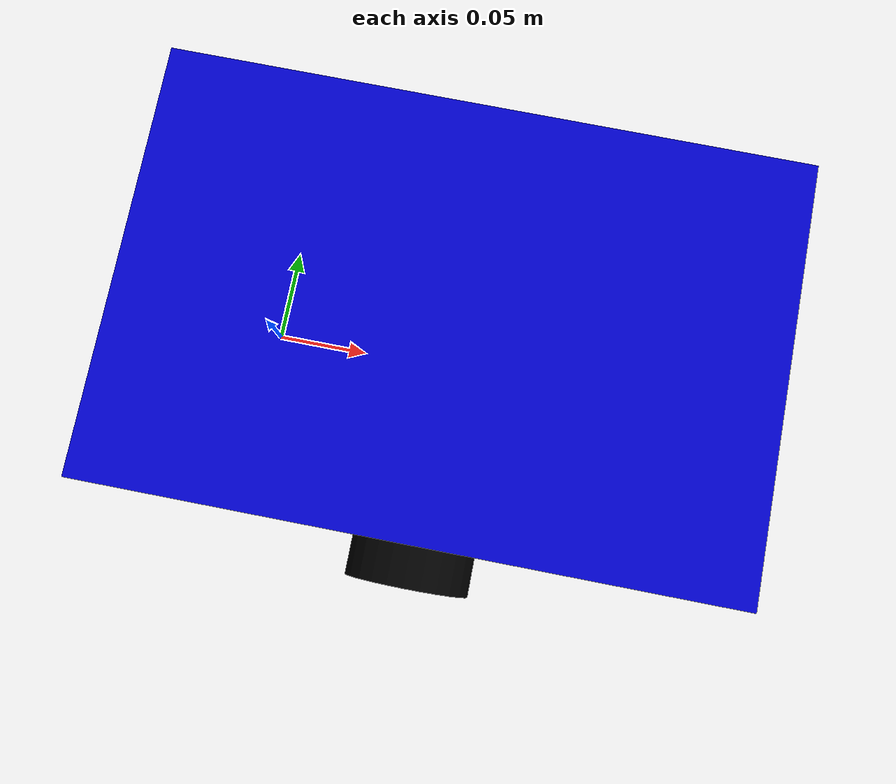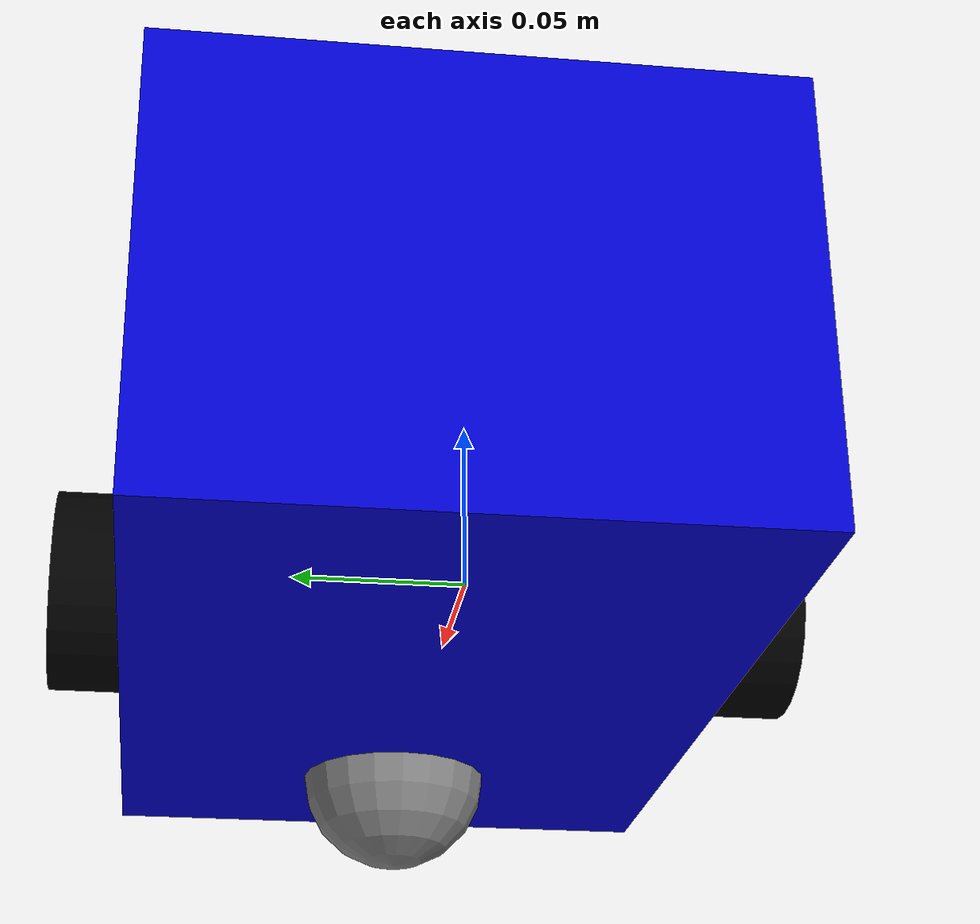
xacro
<?xml version="1.0"?>
<robot xmlns:xacro="http://ros.org" name="boty">

    <!-- MATERIALS FOR VISUAL COLORING -->
    <material name="blue">
        <color rgba="0.0 0.0 0.8 1.0"/>
    </material>
    <material name="black">
        <color rgba="0.0 0.0 0.0 1.0"/>
    </material>
    <material name="grey">
        <color rgba="0.5 0.5 0.5 1.0"/>
    </material>

    <!-- INERTIA MATH MACROS -->
    <!-- Box Inertia Macro -->
    <xacro:macro name="inertial_box" params="mass x y z *origin">
        <inertial>
            <xacro:insert_block name="origin"/>
            <mass value="${mass}" />
            <inertia ixx="${(1/12) * mass * (y*y + z*z)}" ixy="0.0" ixz="0.0"
                     iyy="${(1/12) * mass * (x*x + z*z)}" iyz="0.0"
                     izz="${(1/12) * mass * (x*x + y*y)}" />
        </inertial>
    </xacro:macro>

    <!-- Cylinder Inertia Macro -->
    <xacro:macro name="inertial_cylinder" params="mass length radius *origin">
        <inertial>
            <xacro:insert_block name="origin"/>
            <mass value="${mass}" />
            <inertia ixx="${(1/12) * mass * (3*radius*radius + length*length)}" ixy="0.0" ixz="0.0"
                     iyy="${(1/12) * mass * (3*radius*radius + length*length)}" iyz="0.0"
                     izz="${(1/2) * mass * (radius*radius)}" />
        </inertial>
    </xacro:macro>

    <!-- Sphere Inertia Macro -->
    <xacro:macro name="inertial_sphere" params="mass radius *origin">
        <inertial>
            <xacro:insert_block name="origin"/>
            <mass value="${mass}" />
            <inertia ixx="${(2/5) * mass * radius*radius}" ixy="0.0" ixz="0.0"
                     iyy="${(2/5) * mass * radius*radius}" iyz="0.0"
                     izz="${(2/5) * mass * radius*radius}" />
        </inertial>
    </xacro:macro>

    <!-- ROBOT LINKS & JOINTS WITH PHYSICS ADDED -->

    <!-- Base Link (Zero-mass origin anchor) -->
    <link name="base_link"></link>

    <!-- Chassis Link -->
    <joint name="chassis_joint" type="fixed">
        <parent link="base_link"/>
        <child link="chassis"/>
        <origin xyz="-0.05 0 0"/>
    </joint>

    <link name="chassis">
        <visual>
            <origin xyz="0.15 0 0.075"/>
            <geometry>
                <box size="0.3 0.2 0.15"/>
            </geometry>
            <material name="blue"/>
        </visual>
        <collision>
            <origin xyz="0.15 0 0.075"/>
            <geometry>
                <box size="0.3 0.2 0.15"/>
            </geometry>
        </collision>
        <xacro:inertial_box mass="0.5" x="0.3" y="0.2" z="0.15">
            <origin xyz="0.15 0 0.075"/>
        </xacro:inertial_box>
    </link>

    <!-- Left Wheel Link -->
    <joint name="left_wheel_joint" type="fixed">
        <parent link="base_link"/>
        <child link="left_wheel"/>
        <origin xyz="0.1 0.11 0.033" rpy="-${pi/2} 0 0"/>
        <axis xyz="0 0 1"/>
    </joint>

    <link name="left_wheel">
        <visual>
            <geometry>
                <cylinder radius="0.033" length="0.026"/>
            </geometry>
            <material name="black"/>
        </visual>
        <collision>
            <geometry>
                <cylinder radius="0.033" length="0.026"/>
            </geometry>
        </collision>
        <xacro:inertial_cylinder mass="0.1" length="0.026" radius="0.033">
            <origin xyz="0 0 0" rpy="0 0 0"/>
        </xacro:inertial_cylinder>
    </link>

    <!-- Right Wheel Link -->
    <joint name="right_wheel_joint" type="fixed">
        <parent link="base_link"/>
        <child link="right_wheel"/>
        <origin xyz="0.1 -0.11 0.033" rpy="${pi/2} 0 0"/>
        <axis xyz="0 0 -1"/>
    </joint>

    <link name="right_wheel">
        <visual>
            <geometry>
                <cylinder radius="0.033" length="0.026"/>
            </geometry>
            <material name="black"/>
        </visual>
        <collision>
            <geometry>
                <cylinder radius="0.033" length="0.026"/>
            </geometry>
        </collision>
        <xacro:inertial_cylinder mass="0.1" length="0.026" radius="0.033">
            <origin xyz="0 0 0" rpy="0 0 0"/>
        </xacro:inertial_cylinder>
    </link>

    <!-- Caster Wheel Link -->
    <joint name="caster_wheel_joint" type="fixed">
        <parent link="chassis"/>
        <child link="caster_wheel"/>
        <origin xyz="0.24 0 0"/>
    </joint>

    <link name="caster_wheel">
        <visual>
            <geometry>
                <sphere radius="0.033"/>
            </geometry>
            <material name="grey"/>
        </visual>
        <collision>
            <geometry>
                <sphere radius="0.033"/>
            </geometry>
        </collision>
        <xacro:inertial_sphere mass="0.05" radius="0.033">
            <origin xyz="0 0 0" rpy="0 0 0"/>
        </xacro:inertial_sphere>
    </link>

</robot>
